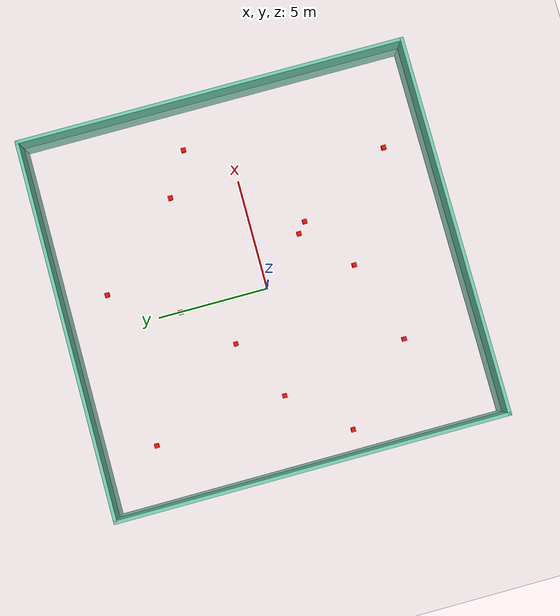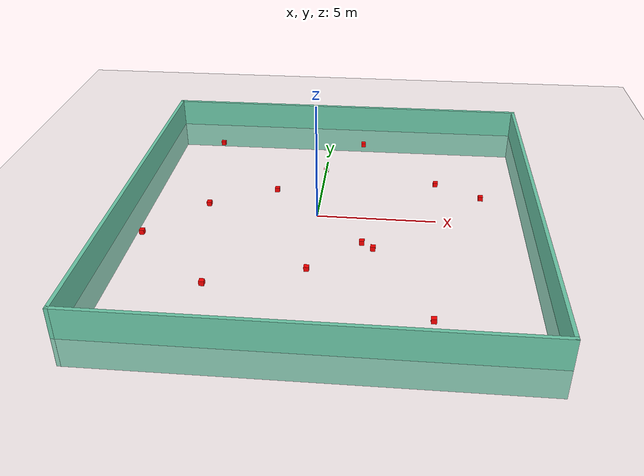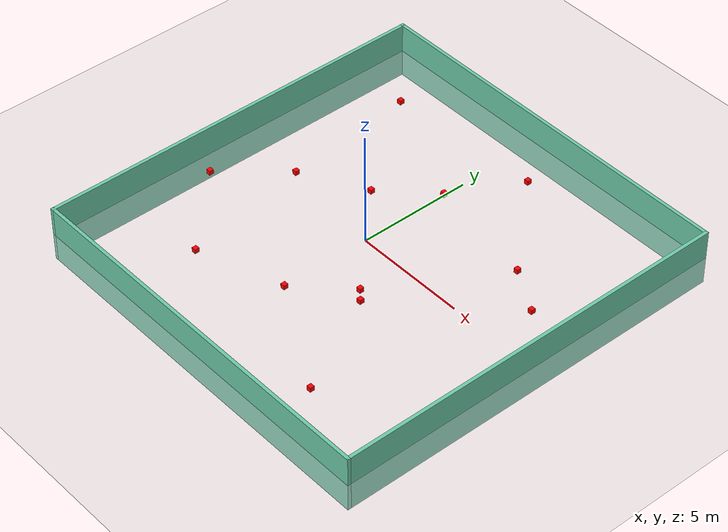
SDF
<?xml version='1.0'?>
<sdf version='1.6'>
  <world name='default'>

    <plugin filename='gz-sim-physics-system' name='gz::sim::systems::Physics'>
    </plugin>
    <plugin filename='gz-sim-user-commands-system' name='gz::sim::systems::UserCommands'>
    </plugin>
    <plugin filename='gz-sim-scene-broadcaster-system' name='gz::sim::systems::SceneBroadcaster'>
    </plugin>
    <plugin filename='gz-sim-sensors-system' name='gz::sim::systems::Sensors'>
      <render_engine>ogre2</render_engine>
    </plugin>
    <plugin filename='gz-sim-imu-system' name='gz::sim::systems::Imu'>
    </plugin>

    <physics name='1ms' type='ignored'>
      <max_step_size>0.001</max_step_size>
      <real_time_factor>1</real_time_factor>
      <real_time_update_rate>1000</real_time_update_rate>
    </physics>

    <scene>
      <ambient>1 1 1 1</ambient>
      <background>0.8 0.8 0.8 1</background>
      <shadows>1</shadows>
      <grid>0</grid>
    </scene>

    <light name='sun' type='directional'>
      <cast_shadows>1</cast_shadows>
      <pose>0 0 10 0 -0 0</pose>
      <diffuse>0.8 0.8 0.8 1</diffuse>
      <specular>0.2 0.2 0.2 1</specular>
      <attenuation>
        <range>1000</range>
        <constant>0.9</constant>
        <linear>0.01</linear>
        <quadratic>0.001</quadratic>
      </attenuation>
      <direction>-0.5 0.1 -0.9</direction>
    </light>

    <spherical_coordinates>
      <surface_model>EARTH_WGS84</surface_model>
      <latitude_deg>50.088362</latitude_deg>
      <longitude_deg>19.939226</longitude_deg>
      <elevation>250</elevation>
      <heading_deg>0</heading_deg>
    </spherical_coordinates>

    <model name='ground_plane'>
      <static>1</static>
      <link name='link'>
        <collision name='collision'>
          <geometry>
            <plane>
              <normal>0 0 1</normal>
              <size>100 100</size>
            </plane>
          </geometry>
          <surface>
            <friction>
              <ode>
                <mu>100</mu>
                <mu2>50</mu2>
              </ode>
            </friction>
          </surface>
        </collision>
        <visual name='visual'>
          <cast_shadows>0</cast_shadows>
          <geometry>
            <plane>
              <normal>0 0 1</normal>
              <size>100 100</size>
            </plane>
          </geometry>
          <material>
            <ambient>0.8 0.8 0.8 1</ambient>
            <diffuse>0.8 0.8 0.8 1</diffuse>
            <specular>0.8 0.8 0.8 1</specular>
          </material>
        </visual>
      </link>
    </model>

    <model name='habitacion'>
      <static>1</static>
      <pose>0.5 0.17 0 0 0 0</pose>

      <link name='Wall_2'>
        <pose>-8.55 0 0 0 0 1.5708</pose>
        <collision name='Collision'>
          <geometry><box><size>17.75 0.15 2.5</size></box></geometry>
        </collision>
        <visual name='Visual'>
          <geometry><box><size>17.75 0.15 2.5</size></box></geometry>
          <material>
            <ambient>0.43 0.8 0.67 1</ambient>
            <diffuse>0.43 0.8 0.67 1</diffuse>
          </material>
        </visual>
      </link>

      <link name='Wall_4'>
        <pose>0 8.8 0 0 0 0</pose>
        <collision name='Collision'>
          <geometry><box><size>17.25 0.15 2.5</size></box></geometry>
        </collision>
        <visual name='Visual'>
          <geometry><box><size>17.25 0.15 2.5</size></box></geometry>
          <material>
            <ambient>0.43 0.8 0.67 1</ambient>
            <diffuse>0.43 0.8 0.67 1</diffuse>
          </material>
        </visual>
      </link>

      <link name='Wall_5'>
        <pose>8.55 0 0 0 0 -1.5708</pose>
        <collision name='Collision'>
          <geometry><box><size>17.75 0.15 2.5</size></box></geometry>
        </collision>
        <visual name='Visual'>
          <geometry><box><size>17.75 0.15 2.5</size></box></geometry>
          <material>
            <ambient>0.43 0.8 0.67 1</ambient>
            <diffuse>0.43 0.8 0.67 1</diffuse>
          </material>
        </visual>
      </link>

      <link name='Wall_6'>
        <pose>0 -8.8 0 0 0 3.14159</pose>
        <collision name='Collision'>
          <geometry><box><size>17.25 0.15 2.5</size></box></geometry>
        </collision>
        <visual name='Visual'>
          <geometry><box><size>17.25 0.15 2.5</size></box></geometry>
          <material>
            <ambient>0.43 0.8 0.67 1</ambient>
            <diffuse>0.43 0.8 0.67 1</diffuse>
          </material>
        </visual>
      </link>
    </model>

    <model name='unit_box'>
      <pose>-5.4 6.53 0.1 0 0 0</pose>
      <static>1</static>
      <link name='link'>
        <collision name='collision'><geometry><box><size>0.2 0.2 0.2</size></box></geometry></collision>
        <visual name='visual'>
          <geometry><box><size>0.2 0.2 0.2</size></box></geometry>
          <material><ambient>1 0 0 1</ambient><diffuse>1 0 0 1</diffuse></material>
        </visual>
      </link>
    </model>

    <model name='unit_box_0'>
      <pose>-3.75 -5.25 0.1 0 0 0</pose>
      <static>1</static>
      <link name='link'>
        <collision name='collision'><geometry><box><size>0.2 0.2 0.2</size></box></geometry></collision>
        <visual name='visual'>
          <geometry><box><size>0.2 0.2 0.2</size></box></geometry>
          <material><ambient>1 0 0 1</ambient><diffuse>1 0 0 1</diffuse></material>
        </visual>
      </link>
    </model>

    <model name='unit_box_1'>
      <pose>2.46 -2.39 0.1 0 0 0</pose>
      <static>1</static>
      <link name='link'>
        <collision name='collision'><geometry><box><size>0.2 0.2 0.2</size></box></geometry></collision>
        <visual name='visual'>
          <geometry><box><size>0.2 0.2 0.2</size></box></geometry>
          <material><ambient>1 0 0 1</ambient><diffuse>1 0 0 1</diffuse></material>
        </visual>
      </link>
    </model>

    <model name='unit_box_2'>
      <pose>4.75 -6.7 0.1 0 0 0</pose>
      <static>1</static>
      <link name='link'>
        <collision name='collision'><geometry><box><size>0.2 0.2 0.2</size></box></geometry></collision>
        <visual name='visual'>
          <geometry><box><size>0.2 0.2 0.2</size></box></geometry>
          <material><ambient>1 0 0 1</ambient><diffuse>1 0 0 1</diffuse></material>
        </visual>
      </link>
    </model>

    <model name='unit_box_3'>
      <pose>-4.77 0.52 0.1 0 0 0</pose>
      <static>1</static>
      <link name='link'>
        <collision name='collision'><geometry><box><size>0.2 0.2 0.2</size></box></geometry></collision>
        <visual name='visual'>
          <geometry><box><size>0.2 0.2 0.2</size></box></geometry>
          <material><ambient>1 0 0 1</ambient><diffuse>1 0 0 1</diffuse></material>
        </visual>
      </link>
    </model>

    <model name='unit_box_4'>
      <pose>1.6 6.95 0.1 0 0 0</pose>
      <static>1</static>
      <link name='link'>
        <collision name='collision'><geometry><box><size>0.2 0.2 0.2</size></box></geometry></collision>
        <visual name='visual'>
          <geometry><box><size>0.2 0.2 0.2</size></box></geometry>
          <material><ambient>1 0 0 1</ambient><diffuse>1 0 0 1</diffuse></material>
        </visual>
      </link>
    </model>

    <model name='unit_box_5'>
      <pose>5.06 3.12 0.1 0 0 0</pose>
      <static>1</static>
      <link name='link'>
        <collision name='collision'><geometry><box><size>0.2 0.2 0.2</size></box></geometry></collision>
        <visual name='visual'>
          <geometry><box><size>0.2 0.2 0.2</size></box></geometry>
          <material><ambient>1 0 0 1</ambient><diffuse>1 0 0 1</diffuse></material>
        </visual>
      </link>
    </model>

    <model name='unit_box_6'>
      <pose>0.0 4.0 0.1 0 0 0</pose>
      <static>1</static>
      <link name='link'>
        <collision name='collision'><geometry><box><size>0.2 0.2 0.2</size></box></geometry></collision>
        <visual name='visual'>
          <geometry><box><size>0.2 0.2 0.2</size></box></geometry>
          <material><ambient>1 0 0 1</ambient><diffuse>1 0 0 1</diffuse></material>
        </visual>
      </link>
    </model>

    <model name='unit_box_7'>
      <pose>0.0 -4.0 0.1 0 0 0</pose>
      <static>1</static>
      <link name='link'>
        <collision name='collision'><geometry><box><size>0.2 0.2 0.2</size></box></geometry></collision>
        <visual name='visual'>
          <geometry><box><size>0.2 0.2 0.2</size></box></geometry>
          <material><ambient>1 0 0 1</ambient><diffuse>1 0 0 1</diffuse></material>
        </visual>
      </link>
    </model>

    <model name='unit_box_8'>
      <pose>-7.0 -2.0 0.1 0 0 0</pose>
      <static>1</static>
      <link name='link'>
        <collision name='collision'><geometry><box><size>0.2 0.2 0.2</size></box></geometry></collision>
        <visual name='visual'>
          <geometry><box><size>0.2 0.2 0.2</size></box></geometry>
          <material><ambient>1 0 0 1</ambient><diffuse>1 0 0 1</diffuse></material>
        </visual>
      </link>
    </model>

    <model name='unit_box_9'>
      <pose>7.0 2.0 0.1 0 0 0</pose>
      <static>1</static>
      <link name='link'>
        <collision name='collision'><geometry><box><size>0.2 0.2 0.2</size></box></geometry></collision>
        <visual name='visual'>
          <geometry><box><size>0.2 0.2 0.2</size></box></geometry>
          <material><ambient>1 0 0 1</ambient><diffuse>1 0 0 1</diffuse></material>
        </visual>
      </link>
    </model>

    <model name='unit_box_10'>
      <pose>-2.0 2.0 0.1 0 0 0</pose>
      <static>1</static>
      <link name='link'>
        <collision name='collision'><geometry><box><size>0.2 0.2 0.2</size></box></geometry></collision>
        <visual name='visual'>
          <geometry><box><size>0.2 0.2 0.2</size></box></geometry>
          <material><ambient>1 0 0 1</ambient><diffuse>1 0 0 1</diffuse></material>
        </visual>
      </link>
    </model>

    <model name='unit_box_11'>
      <pose>2.0 -2.0 0.1 0 0 0</pose>
      <static>1</static>
      <link name='link'>
        <collision name='collision'><geometry><box><size>0.2 0.2 0.2</size></box></geometry></collision>
        <visual name='visual'>
          <geometry><box><size>0.2 0.2 0.2</size></box></geometry>
          <material><ambient>1 0 0 1</ambient><diffuse>1 0 0 1</diffuse></material>
        </visual>
      </link>
    </model>

  </world>
</sdf>
